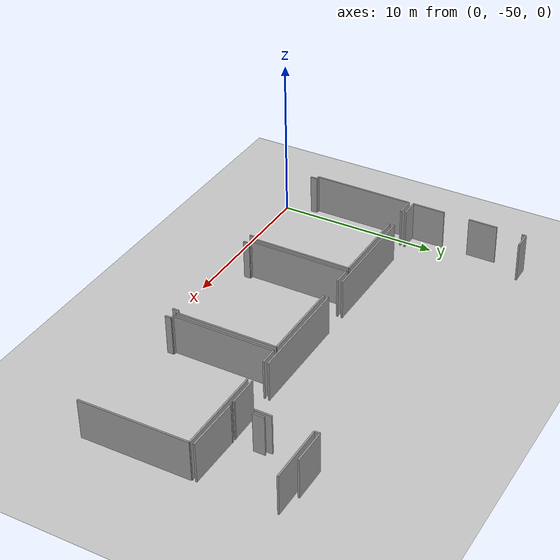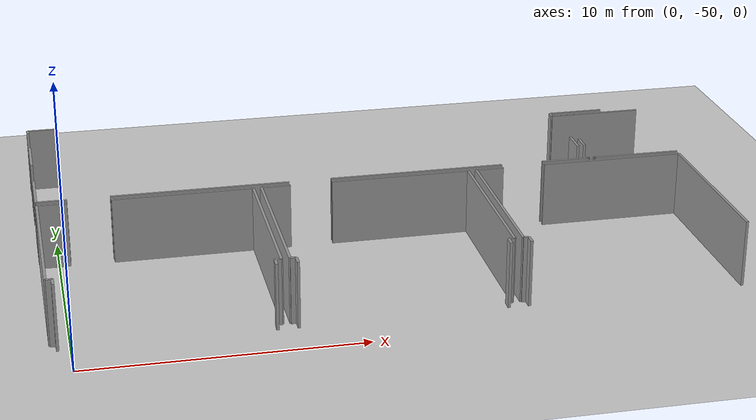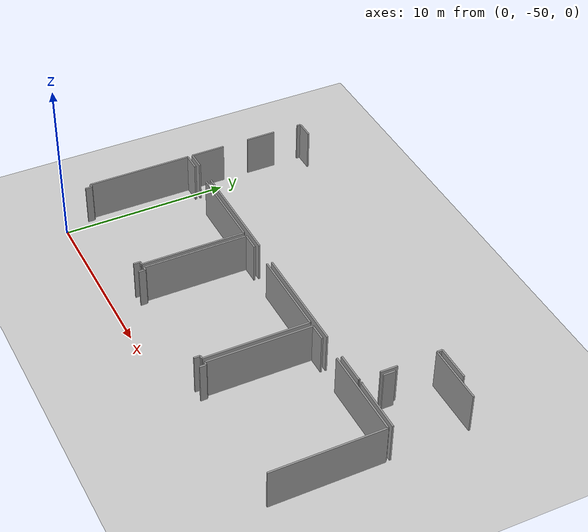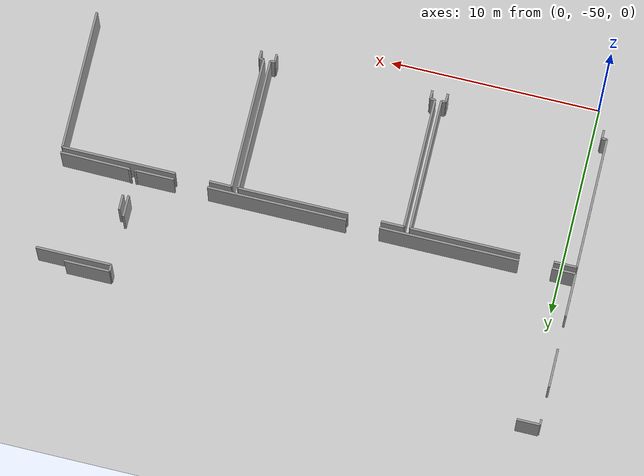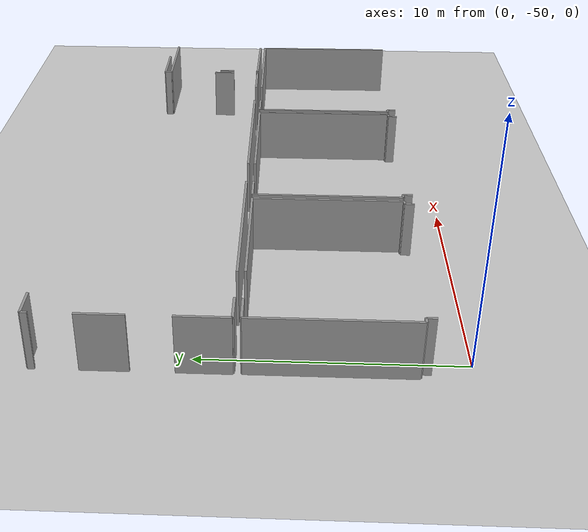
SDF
<sdf version="1.6">
 <world name="default">
  <model name="ground_plane">
   <static>1</static>
   <link name="link">
    <collision name="collision">
     <geometry><plane><normal>0 0 1</normal><size>100 100</size></plane></geometry>
     <surface><friction><ode><mu>100</mu><mu2>50</mu2></ode></friction></surface>
    </collision>
    <visual name="visual">
     <cast_shadows>0</cast_shadows>
     <geometry><plane><normal>0 0 1</normal><size>100 100</size></plane></geometry>
     <material>
      <script><uri>file://media/materials/scripts/gazebo.material</uri><name>Gazebo/Grey</name></script>
     </material>
    </visual>
   </link>
  </model>
  <model name="50025632">
   <static>1</static>
   <link name="Wall_391">
    <collision name="Wall_391_Collision">
     <geometry><box><size>0.0712530244432 0.1 2.5</size></box></geometry>
     <pose>0.0356265122216 0 1.25 0 0 0</pose>
    </collision>
    <visual name="Wall_391_Visual">
     <pose>0.0356265122216 0 1.25 0 0 0</pose>
     <geometry><box><size>0.0712530244432 0.1 2.5</size></box></geometry>
     <material>
      <script><uri>file://media/materials/scripts/gazebo.material</uri><name>Gazebo/Grey</name></script>
      <ambient>1 1 1 1</ambient>
     </material>
    </visual>
    <pose>70.4084030305 -89.9206690926 0 0 0 -1.57079632679</pose>
   </link>
   <link name="Wall_392">
    <collision name="Wall_392_Collision">
     <geometry><box><size>1.84902233484 0.1 2.5</size></box></geometry>
     <pose>0.924511167419 0 1.25 0 0 0</pose>
    </collision>
    <visual name="Wall_392_Visual">
     <pose>0.924511167419 0 1.25 0 0 0</pose>
     <geometry><box><size>1.84902233484 0.1 2.5</size></box></geometry>
     <material>
      <script><uri>file://media/materials/scripts/gazebo.material</uri><name>Gazebo/Grey</name></script>
      <ambient>1 1 1 1</ambient>
     </material>
    </visual>
    <pose>70.4084030305 -89.991922117 0 0 0 3.14159265359</pose>
   </link>
   <link name="Wall_393">
    <collision name="Wall_393_Collision">
     <geometry><box><size>6.61408422082 0.1 2.5</size></box></geometry>
     <pose>3.30704211041 0 1.25 0 0 0</pose>
    </collision>
    <visual name="Wall_393_Visual">
     <pose>3.30704211041 0 1.25 0 0 0</pose>
     <geometry><box><size>6.61408422082 0.1 2.5</size></box></geometry>
     <material>
      <script><uri>file://media/materials/scripts/gazebo.material</uri><name>Gazebo/Grey</name></script>
      <ambient>1 1 1 1</ambient>
     </material>
    </visual>
    <pose>66.9584103336 -89.991922117 0 0 0 3.14159265359</pose>
   </link>
   <link name="Wall_394">
    <collision name="Wall_394_Collision">
     <geometry><box><size>6.62665828396 0.1 2.5</size></box></geometry>
     <pose>3.31332914198 0 1.25 0 0 0</pose>
    </collision>
    <visual name="Wall_394_Visual">
     <pose>3.31332914198 0 1.25 0 0 0</pose>
     <geometry><box><size>6.62665828396 0.1 2.5</size></box></geometry>
     <material>
      <script><uri>file://media/materials/scripts/gazebo.material</uri><name>Gazebo/Grey</name></script>
      <ambient>1 1 1 1</ambient>
     </material>
    </visual>
    <pose>58.7646935548 -89.991922117 0 0 0 3.14159265359</pose>
   </link>
   <link name="Wall_395">
    <collision name="Wall_395_Collision">
     <geometry><box><size>1.11540830777 0.1 2.5</size></box></geometry>
     <pose>0.557704153886 0 1.25 0 0 0</pose>
    </collision>
    <visual name="Wall_395_Visual">
     <pose>0.557704153886 0 1.25 0 0 0</pose>
     <geometry><box><size>1.11540830777 0.1 2.5</size></box></geometry>
     <material>
      <script><uri>file://media/materials/scripts/gazebo.material</uri><name>Gazebo/Grey</name></script>
      <ambient>1 1 1 1</ambient>
     </material>
    </visual>
    <pose>50.5726279157 -89.991922117 0 0 0 3.14159265359</pose>
   </link>
   <link name="Wall_396">
    <collision name="Wall_396_Collision">
     <geometry><box><size>2.05630386049 0.1 2.5</size></box></geometry>
     <pose>1.02815193025 0 1.25 0 0 0</pose>
    </collision>
    <visual name="Wall_396_Visual">
     <pose>1.02815193025 0 1.25 0 0 0</pose>
     <geometry><box><size>2.05630386049 0.1 2.5</size></box></geometry>
     <material>
      <script><uri>file://media/materials/scripts/gazebo.material</uri><name>Gazebo/Grey</name></script>
      <ambient>1 1 1 1</ambient>
     </material>
    </visual>
    <pose>49.4572196079 -89.991922117 0 0 0 1.57079632679</pose>
   </link>
   <link name="Wall_397">
    <collision name="Wall_397_Collision">
     <geometry><box><size>1.81434840316 0.1 2.5</size></box></geometry>
     <pose>0.907174201579 0 1.25 0 0 0</pose>
    </collision>
    <visual name="Wall_397_Visual">
     <pose>0.907174201579 0 1.25 0 0 0</pose>
     <geometry><box><size>1.81434840316 0.1 2.5</size></box></geometry>
     <material>
      <script><uri>file://media/materials/scripts/gazebo.material</uri><name>Gazebo/Grey</name></script>
      <ambient>1 1 1 1</ambient>
     </material>
    </visual>
    <pose>49.4572196079 -86.326138175 0 0 0 1.57079632679</pose>
   </link>
   <link name="Wall_398">
    <collision name="Wall_398_Collision">
     <geometry><box><size>0.254148488255 0.1 2.5</size></box></geometry>
     <pose>0.127074244127 0 1.25 0 0 0</pose>
    </collision>
    <visual name="Wall_398_Visual">
     <pose>0.127074244127 0 1.25 0 0 0</pose>
     <geometry><box><size>0.254148488255 0.1 2.5</size></box></geometry>
     <material>
      <script><uri>file://media/materials/scripts/gazebo.material</uri><name>Gazebo/Grey</name></script>
      <ambient>1 1 1 1</ambient>
     </material>
    </visual>
    <pose>49.4572196079 -82.9406669334 0 0 0 1.57079632679</pose>
   </link>
   <link name="Wall_399">
    <collision name="Wall_399_Collision">
     <geometry><box><size>1.09991299764 0.1 2.5</size></box></geometry>
     <pose>0.549956498822 0 1.25 0 0 0</pose>
    </collision>
    <visual name="Wall_399_Visual">
     <pose>0.549956498822 0 1.25 0 0 0</pose>
     <geometry><box><size>1.09991299764 0.1 2.5</size></box></geometry>
     <material>
      <script><uri>file://media/materials/scripts/gazebo.material</uri><name>Gazebo/Grey</name></script>
      <ambient>1 1 1 1</ambient>
     </material>
    </visual>
    <pose>49.4572196079 -82.6865184451 0 0 0 0.0</pose>
   </link>
   <link name="Wall_404">
    <collision name="Wall_404_Collision">
     <geometry><box><size>2.14229013063 0.1 2.5</size></box></geometry>
     <pose>1.07114506532 0 1.25 0 0 0</pose>
    </collision>
    <visual name="Wall_404_Visual">
     <pose>1.07114506532 0 1.25 0 0 0</pose>
     <geometry><box><size>2.14229013063 0.1 2.5</size></box></geometry>
     <material>
      <script><uri>file://media/materials/scripts/gazebo.material</uri><name>Gazebo/Grey</name></script>
      <ambient>1 1 1 1</ambient>
     </material>
    </visual>
    <pose>72.5388811624 -85.0538716048 0 0 0 3.14159265359</pose>
   </link>
   <link name="Wall_405">
    <collision name="Wall_405_Collision">
     <geometry><box><size>0.312319406606 0.1 2.5</size></box></geometry>
     <pose>0.156159703303 0 1.25 0 0 0</pose>
    </collision>
    <visual name="Wall_405_Visual">
     <pose>0.156159703303 0 1.25 0 0 0</pose>
     <geometry><box><size>0.312319406606 0.1 2.5</size></box></geometry>
     <material>
      <script><uri>file://media/materials/scripts/gazebo.material</uri><name>Gazebo/Grey</name></script>
      <ambient>1 1 1 1</ambient>
     </material>
    </visual>
    <pose>70.3965910318 -85.0538716048 0 0 0 -1.57079632679</pose>
   </link>
   <link name="Wall_406">
    <collision name="Wall_406_Collision">
     <geometry><box><size>3.5830999511 0.1 2.5</size></box></geometry>
     <pose>1.79154997555 0 1.25 0 0 0</pose>
    </collision>
    <visual name="Wall_406_Visual">
     <pose>1.79154997555 0 1.25 0 0 0</pose>
     <geometry><box><size>3.5830999511 0.1 2.5</size></box></geometry>
     <material>
      <script><uri>file://media/materials/scripts/gazebo.material</uri><name>Gazebo/Grey</name></script>
      <ambient>1 1 1 1</ambient>
     </material>
    </visual>
    <pose>70.3965910318 -85.3661910115 0 0 0 0.0</pose>
   </link>
   <link name="Wall_410">
    <collision name="Wall_410_Collision">
     <geometry><box><size>1.01089762733 0.1 2.5</size></box></geometry>
     <pose>0.505448813663 0 1.25 0 0 0</pose>
    </collision>
    <visual name="Wall_410_Visual">
     <pose>0.505448813663 0 1.25 0 0 0</pose>
     <geometry><box><size>1.01089762733 0.1 2.5</size></box></geometry>
     <material>
      <script><uri>file://media/materials/scripts/gazebo.material</uri><name>Gazebo/Grey</name></script>
      <ambient>1 1 1 1</ambient>
     </material>
    </visual>
    <pose>70.4146265567 -87.7310039564 0 0 0 -1.57695280134</pose>
   </link>
   <link name="Wall_457">
    <collision name="Wall_457_Collision">
     <geometry><box><size>0.398432687484 0.1 2.5</size></box></geometry>
     <pose>0.199216343742 0 1.25 0 0 0</pose>
    </collision>
    <visual name="Wall_457_Visual">
     <pose>0.199216343742 0 1.25 0 0 0</pose>
     <geometry><box><size>0.398432687484 0.1 2.5</size></box></geometry>
     <material>
      <script><uri>file://media/materials/scripts/gazebo.material</uri><name>Gazebo/Grey</name></script>
      <ambient>1 1 1 1</ambient>
     </material>
    </visual>
    <pose>49.7024773445 -96.9557939124 0 0 0 1.57079632679</pose>
   </link>
   <link name="Wall_458">
    <collision name="Wall_458_Collision">
     <geometry><box><size>0.233699759315 0.1 2.5</size></box></geometry>
     <pose>0.116849879657 0 1.25 0 0 0</pose>
    </collision>
    <visual name="Wall_458_Visual">
     <pose>0.116849879657 0 1.25 0 0 0</pose>
     <geometry><box><size>0.233699759315 0.1 2.5</size></box></geometry>
     <material>
      <script><uri>file://media/materials/scripts/gazebo.material</uri><name>Gazebo/Grey</name></script>
      <ambient>1 1 1 1</ambient>
     </material>
    </visual>
    <pose>49.7024773445 -96.5573612249 0 0 0 3.14159265359</pose>
   </link>
   <link name="Wall_459">
    <collision name="Wall_459_Collision">
     <geometry><box><size>6.26213746372 0.1 2.5</size></box></geometry>
     <pose>3.13106873186 0 1.25 0 0 0</pose>
    </collision>
    <visual name="Wall_459_Visual">
     <pose>3.13106873186 0 1.25 0 0 0</pose>
     <geometry><box><size>6.26213746372 0.1 2.5</size></box></geometry>
     <material>
      <script><uri>file://media/materials/scripts/gazebo.material</uri><name>Gazebo/Grey</name></script>
      <ambient>1 1 1 1</ambient>
     </material>
    </visual>
    <pose>49.4687775851 -96.5573612249 0 0 0 1.57079632679</pose>
   </link>
   <link name="Wall_460">
    <collision name="Wall_460_Collision">
     <geometry><box><size>1.08467170899 0.1 2.5</size></box></geometry>
     <pose>0.542335854496 0 1.25 0 0 0</pose>
    </collision>
    <visual name="Wall_460_Visual">
     <pose>0.542335854496 0 1.25 0 0 0</pose>
     <geometry><box><size>1.08467170899 0.1 2.5</size></box></geometry>
     <material>
      <script><uri>file://media/materials/scripts/gazebo.material</uri><name>Gazebo/Grey</name></script>
      <ambient>1 1 1 1</ambient>
     </material>
    </visual>
    <pose>49.4687775851 -90.2952237612 0 0 0 0.0</pose>
   </link>
   <link name="Wall_461">
    <collision name="Wall_461_Collision">
     <geometry><box><size>5.21480691192 0.1 2.5</size></box></geometry>
     <pose>2.60740345596 0 1.25 0 0 0</pose>
    </collision>
    <visual name="Wall_461_Visual">
     <pose>2.60740345596 0 1.25 0 0 0</pose>
     <geometry><box><size>5.21480691192 0.1 2.5</size></box></geometry>
     <material>
      <script><uri>file://media/materials/scripts/gazebo.material</uri><name>Gazebo/Grey</name></script>
      <ambient>1 1 1 1</ambient>
     </material>
    </visual>
    <pose>52.1573409032 -90.2952237612 0 0 0 0.0</pose>
   </link>
   <link name="Wall_462">
    <collision name="Wall_462_Collision">
     <geometry><box><size>6.26213746372 0.1 2.5</size></box></geometry>
     <pose>3.13106873186 0 1.25 0 0 0</pose>
    </collision>
    <visual name="Wall_462_Visual">
     <pose>3.13106873186 0 1.25 0 0 0</pose>
     <geometry><box><size>6.26213746372 0.1 2.5</size></box></geometry>
     <material>
      <script><uri>file://media/materials/scripts/gazebo.material</uri><name>Gazebo/Grey</name></script>
      <ambient>1 1 1 1</ambient>
     </material>
    </visual>
    <pose>57.3721478151 -90.2952237612 0 0 0 -1.57079632679</pose>
   </link>
   <link name="Wall_463">
    <collision name="Wall_463_Collision">
     <geometry><box><size>0.205757396788 0.1 2.5</size></box></geometry>
     <pose>0.102878698394 0 1.25 0 0 0</pose>
    </collision>
    <visual name="Wall_463_Visual">
     <pose>0.102878698394 0 1.25 0 0 0</pose>
     <geometry><box><size>0.205757396788 0.1 2.5</size></box></geometry>
     <material>
      <script><uri>file://media/materials/scripts/gazebo.material</uri><name>Gazebo/Grey</name></script>
      <ambient>1 1 1 1</ambient>
     </material>
    </visual>
    <pose>57.3721478151 -96.5573612249 0 0 0 3.14159265359</pose>
   </link>
   <link name="Wall_464">
    <collision name="Wall_464_Collision">
     <geometry><box><size>0.398963616786 0.1 2.5</size></box></geometry>
     <pose>0.199481808393 0 1.25 0 0 0</pose>
    </collision>
    <visual name="Wall_464_Visual">
     <pose>0.199481808393 0 1.25 0 0 0</pose>
     <geometry><box><size>0.398963616786 0.1 2.5</size></box></geometry>
     <material>
      <script><uri>file://media/materials/scripts/gazebo.material</uri><name>Gazebo/Grey</name></script>
      <ambient>1 1 1 1</ambient>
     </material>
    </visual>
    <pose>57.1663904183 -96.5573612249 0 0 0 -1.62239218886</pose>
   </link>
   <link name="Wall_465">
    <collision name="Wall_465_Collision">
     <geometry><box><size>0.40084589152 0.1 2.5</size></box></geometry>
     <pose>0.20042294576 0 1.25 0 0 0</pose>
    </collision>
    <visual name="Wall_465_Visual">
     <pose>0.20042294576 0 1.25 0 0 0</pose>
     <geometry><box><size>0.40084589152 0.1 2.5</size></box></geometry>
     <material>
      <script><uri>file://media/materials/scripts/gazebo.material</uri><name>Gazebo/Grey</name></script>
      <ambient>1 1 1 1</ambient>
     </material>
    </visual>
    <pose>57.8890815218 -96.9474112036 0 0 0 1.57079632679</pose>
   </link>
   <link name="Wall_466">
    <collision name="Wall_466_Collision">
     <geometry><box><size>0.217061352537 0.1 2.5</size></box></geometry>
     <pose>0.108530676269 0 1.25 0 0 0</pose>
    </collision>
    <visual name="Wall_466_Visual">
     <pose>0.108530676269 0 1.25 0 0 0</pose>
     <geometry><box><size>0.217061352537 0.1 2.5</size></box></geometry>
     <material>
      <script><uri>file://media/materials/scripts/gazebo.material</uri><name>Gazebo/Grey</name></script>
      <ambient>1 1 1 1</ambient>
     </material>
    </visual>
    <pose>57.8890815218 -96.5465653121 0 0 0 3.14159265359</pose>
   </link>
   <link name="Wall_467">
    <collision name="Wall_467_Collision">
     <geometry><box><size>6.25680301269 0.1 2.5</size></box></geometry>
     <pose>3.12840150635 0 1.25 0 0 0</pose>
    </collision>
    <visual name="Wall_467_Visual">
     <pose>3.12840150635 0 1.25 0 0 0</pose>
     <geometry><box><size>6.25680301269 0.1 2.5</size></box></geometry>
     <material>
      <script><uri>file://media/materials/scripts/gazebo.material</uri><name>Gazebo/Grey</name></script>
      <ambient>1 1 1 1</ambient>
     </material>
    </visual>
    <pose>57.6720201693 -96.5465653121 0 0 0 1.57079632679</pose>
   </link>
   <link name="Wall_468">
    <collision name="Wall_468_Collision">
     <geometry><box><size>1.08378263382 0.1 2.5</size></box></geometry>
     <pose>0.541891316911 0 1.25 0 0 0</pose>
    </collision>
    <visual name="Wall_468_Visual">
     <pose>0.541891316911 0 1.25 0 0 0</pose>
     <geometry><box><size>1.08378263382 0.1 2.5</size></box></geometry>
     <material>
      <script><uri>file://media/materials/scripts/gazebo.material</uri><name>Gazebo/Grey</name></script>
      <ambient>1 1 1 1</ambient>
     </material>
    </visual>
    <pose>57.6720201693 -90.2897622994 0 0 0 0.0</pose>
   </link>
   <link name="Wall_469">
    <collision name="Wall_469_Collision">
     <geometry><box><size>5.23411254422 0.1 2.5</size></box></geometry>
     <pose>2.61705627211 0 1.25 0 0 0</pose>
    </collision>
    <visual name="Wall_469_Visual">
     <pose>2.61705627211 0 1.25 0 0 0</pose>
     <geometry><box><size>5.23411254422 0.1 2.5</size></box></geometry>
     <material>
      <script><uri>file://media/materials/scripts/gazebo.material</uri><name>Gazebo/Grey</name></script>
      <ambient>1 1 1 1</ambient>
     </material>
    </visual>
    <pose>60.33010091 -90.2897622994 0 0 0 0.0</pose>
   </link>
   <link name="Wall_470">
    <collision name="Wall_470_Collision">
     <geometry><box><size>6.27687070942 0.1 2.5</size></box></geometry>
     <pose>3.13843535471 0 1.25 0 0 0</pose>
    </collision>
    <visual name="Wall_470_Visual">
     <pose>3.13843535471 0 1.25 0 0 0</pose>
     <geometry><box><size>6.27687070942 0.1 2.5</size></box></geometry>
     <material>
      <script><uri>file://media/materials/scripts/gazebo.material</uri><name>Gazebo/Grey</name></script>
      <ambient>1 1 1 1</ambient>
     </material>
    </visual>
    <pose>65.5642134542 -90.2897622994 0 0 0 -1.57079632679</pose>
   </link>
   <link name="Wall_471">
    <collision name="Wall_471_Collision">
     <geometry><box><size>0.207662557869 0.1 2.5</size></box></geometry>
     <pose>0.103831278935 0 1.25 0 0 0</pose>
    </collision>
    <visual name="Wall_471_Visual">
     <pose>0.103831278935 0 1.25 0 0 0</pose>
     <geometry><box><size>0.207662557869 0.1 2.5</size></box></geometry>
     <material>
      <script><uri>file://media/materials/scripts/gazebo.material</uri><name>Gazebo/Grey</name></script>
      <ambient>1 1 1 1</ambient>
     </material>
    </visual>
    <pose>65.5642134542 -96.5666330088 0 0 0 3.14159265359</pose>
   </link>
   <link name="Wall_472">
    <collision name="Wall_472_Collision">
     <geometry><box><size>0.3809070478 0.1 2.5</size></box></geometry>
     <pose>0.1904535239 0 1.25 0 0 0</pose>
    </collision>
    <visual name="Wall_472_Visual">
     <pose>0.1904535239 0 1.25 0 0 0</pose>
     <geometry><box><size>0.3809070478 0.1 2.5</size></box></geometry>
     <material>
      <script><uri>file://media/materials/scripts/gazebo.material</uri><name>Gazebo/Grey</name></script>
      <ambient>1 1 1 1</ambient>
     </material>
    </visual>
    <pose>65.3565508964 -96.5666330088 0 0 0 -1.59680780367</pose>
   </link>
   <link name="Wall_473">
    <collision name="Wall_473_Collision">
     <geometry><box><size>0.384588516959 0.1 2.5</size></box></geometry>
     <pose>0.19229425848 0 1.25 0 0 0</pose>
    </collision>
    <visual name="Wall_473_Visual">
     <pose>0.19229425848 0 1.25 0 0 0</pose>
     <geometry><box><size>0.384588516959 0.1 2.5</size></box></geometry>
     <material>
      <script><uri>file://media/materials/scripts/gazebo.material</uri><name>Gazebo/Grey</name></script>
      <ambient>1 1 1 1</ambient>
     </material>
    </visual>
    <pose>66.0816552039 -96.9477922358 0 0 0 1.57079632679</pose>
   </link>
   <link name="Wall_474">
    <collision name="Wall_474_Collision">
     <geometry><box><size>0.20042294576 0.1 2.5</size></box></geometry>
     <pose>0.10021147288 0 1.25 0 0 0</pose>
    </collision>
    <visual name="Wall_474_Visual">
     <pose>0.10021147288 0 1.25 0 0 0</pose>
     <geometry><box><size>0.20042294576 0.1 2.5</size></box></geometry>
     <material>
      <script><uri>file://media/materials/scripts/gazebo.material</uri><name>Gazebo/Grey</name></script>
      <ambient>1 1 1 1</ambient>
     </material>
    </visual>
    <pose>66.0816552039 -96.5632037189 0 0 0 3.14159265359</pose>
   </link>
   <link name="Wall_475">
    <collision name="Wall_475_Collision">
     <geometry><box><size>6.28080804232 0.1 2.5</size></box></geometry>
     <pose>3.14040402116 0 1.25 0 0 0</pose>
    </collision>
    <visual name="Wall_475_Visual">
     <pose>3.14040402116 0 1.25 0 0 0</pose>
     <geometry><box><size>6.28080804232 0.1 2.5</size></box></geometry>
     <material>
      <script><uri>file://media/materials/scripts/gazebo.material</uri><name>Gazebo/Grey</name></script>
      <ambient>1 1 1 1</ambient>
     </material>
    </visual>
    <pose>65.8812322582 -96.5632037189 0 0 0 1.57079632679</pose>
   </link>
   <link name="Wall_476">
    <collision name="Wall_476_Collision">
     <geometry><box><size>1.05876151829 0.1 2.5</size></box></geometry>
     <pose>0.529380759143 0 1.25 0 0 0</pose>
    </collision>
    <visual name="Wall_476_Visual">
     <pose>0.529380759143 0 1.25 0 0 0</pose>
     <geometry><box><size>1.05876151829 0.1 2.5</size></box></geometry>
     <material>
      <script><uri>file://media/materials/scripts/gazebo.material</uri><name>Gazebo/Grey</name></script>
      <ambient>1 1 1 1</ambient>
     </material>
    </visual>
    <pose>65.8812322582 -90.2823956766 0 0 0 0.0</pose>
   </link>
   <link name="Wall_477">
    <collision name="Wall_477_Collision">
     <geometry><box><size>5.4100224174 0.1 2.5</size></box></geometry>
     <pose>2.7050112087 0 1.25 0 0 0</pose>
    </collision>
    <visual name="Wall_477_Visual">
     <pose>2.7050112087 0 1.25 0 0 0</pose>
     <geometry><box><size>5.4100224174 0.1 2.5</size></box></geometry>
     <material>
      <script><uri>file://media/materials/scripts/gazebo.material</uri><name>Gazebo/Grey</name></script>
      <ambient>1 1 1 1</ambient>
     </material>
    </visual>
    <pose>68.5593806956 -90.2823956766 0 0 0 0.0</pose>
   </link>
   <link name="Wall_478">
    <collision name="Wall_478_Collision">
     <geometry><box><size>6.66551360131 0.1 2.5</size></box></geometry>
     <pose>3.33275680066 0 1.25 0 0 0</pose>
    </collision>
    <visual name="Wall_478_Visual">
     <pose>3.33275680066 0 1.25 0 0 0</pose>
     <geometry><box><size>6.66551360131 0.1 2.5</size></box></geometry>
     <material>
      <script><uri>file://media/materials/scripts/gazebo.material</uri><name>Gazebo/Grey</name></script>
      <ambient>1 1 1 1</ambient>
     </material>
    </visual>
    <pose>73.969403113 -90.2823956766 0 0 0 -1.56487021617</pose>
   </link>
   <link name="Wall_481">
    <collision name="Wall_481_Collision">
     <geometry><box><size>0.711260137045 0.1 2.5</size></box></geometry>
     <pose>0.355630068522 0 1.25 0 0 0</pose>
    </collision>
    <visual name="Wall_481_Visual">
     <pose>0.355630068522 0 1.25 0 0 0</pose>
     <geometry><box><size>0.711260137045 0.1 2.5</size></box></geometry>
     <material>
      <script><uri>file://media/materials/scripts/gazebo.material</uri><name>Gazebo/Grey</name></script>
      <ambient>1 1 1 1</ambient>
     </material>
    </visual>
    <pose>70.6747445497 -88.0019178622 0 0 0 -1.57079632679</pose>
   </link>
   <link name="Wall_482">
    <collision name="Wall_482_Collision">
     <geometry><box><size>0.0693478633618 0.1 2.5</size></box></geometry>
     <pose>0.0346739316809 0 1.25 0 0 0</pose>
    </collision>
    <visual name="Wall_482_Visual">
     <pose>0.0346739316809 0 1.25 0 0 0</pose>
     <geometry><box><size>0.0693478633618 0.1 2.5</size></box></geometry>
     <material>
      <script><uri>file://media/materials/scripts/gazebo.material</uri><name>Gazebo/Grey</name></script>
      <ambient>1 1 1 1</ambient>
     </material>
    </visual>
    <pose>70.6747445497 -89.9206690926 0 0 0 -1.57079632679</pose>
   </link>
   <link name="Wall_483">
    <collision name="Wall_483_Collision">
     <geometry><box><size>3.31222365691 0.1 2.5</size></box></geometry>
     <pose>1.65611182846 0 1.25 0 0 0</pose>
    </collision>
    <visual name="Wall_483_Visual">
     <pose>1.65611182846 0 1.25 0 0 0</pose>
     <geometry><box><size>3.31222365691 0.1 2.5</size></box></geometry>
     <material>
      <script><uri>file://media/materials/scripts/gazebo.material</uri><name>Gazebo/Grey</name></script>
      <ambient>1 1 1 1</ambient>
     </material>
    </visual>
    <pose>70.6747445497 -89.9900169559 0 0 0 -0.00997014169396</pose>
   </link>
   <pose>-50.15 48.4557939124 0 0 0 0</pose>
  </model>
 </world>
</sdf>
